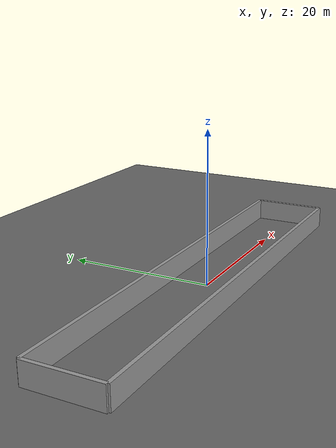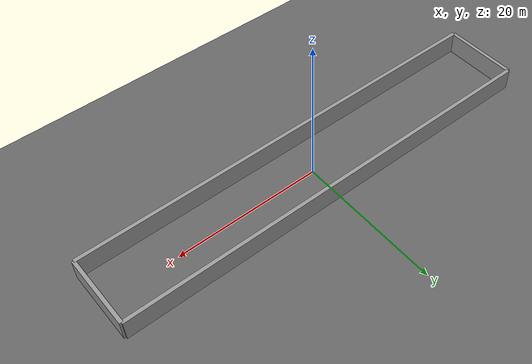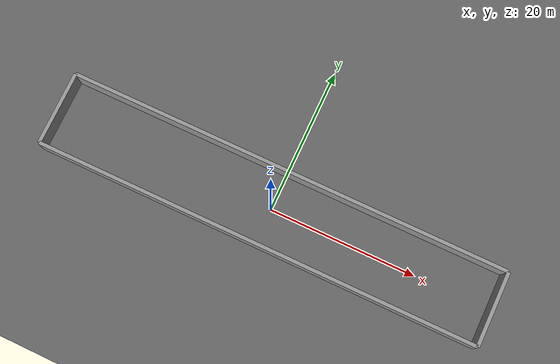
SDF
<?xml version="1.0" ?>
<sdf version="1.9">
  <world name="simple_warehouse">
    <!-- Physics Optimized for RTF 1.0 (5ms step size) -->
    <physics name="5ms" type="ignored">
      <max_step_size>0.005</max_step_size>
      <real_time_factor>1.0</real_time_factor>
      <real_time_update_rate>200</real_time_update_rate>
    </physics>

    <!-- Required Gazebo Sim (Ignition Fortress) system plugins -->
    <plugin filename="libignition-gazebo-physics-system.so"
            name="ignition::gazebo::systems::Physics"/>
    <plugin filename="libignition-gazebo-user-commands-system.so"
            name="ignition::gazebo::systems::UserCommands"/>
    <plugin filename="libignition-gazebo-scene-broadcaster-system.so"
            name="ignition::gazebo::systems::SceneBroadcaster"/>
    <plugin filename="libignition-gazebo-imu-system.so"
            name="ignition::gazebo::systems::Imu"/>
    <plugin filename="libignition-gazebo-sensors-system.so"
            name="ignition::gazebo::systems::Sensors">
      <render_engine>ogre2</render_engine>
    </plugin>

    <scene>
      <ambient>0.8 0.8 0.8 1</ambient>
      <background>0.3 0.3 0.3 1</background>
      <shadows>false</shadows>
    </scene>

    <light type="directional" name="sun">
      <cast_shadows>true</cast_shadows>
      <pose>0 0 10 0 0 0</pose>
      <diffuse>0.8 0.8 0.8 1</diffuse>
      <specular>0.2 0.2 0.2 1</specular>
      <direction>-0.5 0.1 -0.9</direction>
    </light>

    <!-- Ground Plane with friction properties to prevent wheel slippage -->
    <model name="ground_plane">
      <static>true</static>
      <link name="link">
        <collision name="collision">
          <geometry>
            <plane><normal>0 0 1</normal><size>150 150</size></plane>
          </geometry>
          <surface>
            <friction>
              <ode><mu>100</mu><mu2>50</mu2></ode>
            </friction>
          </surface>
        </collision>
        <visual name="visual">
          <geometry>
            <plane><normal>0 0 1</normal><size>150 150</size></plane>
          </geometry>
          <material>
            <ambient>0.4 0.4 0.4 1</ambient>
            <diffuse>0.4 0.4 0.4 1</diffuse>
          </material>
        </visual>
      </link>
    </model>

    <!-- Large Closed Hallway (60m x 10m) -->
    <!-- North/South Walls (Ends) -->
    <model name="wall_north"><static>true</static><pose>30 0 1.5 0 0 0</pose><link name="link"><collision name="c"><geometry><box><size>0.5 10 3</size></box></geometry></collision><visual name="v"><geometry><box><size>0.5 10 3</size></box></geometry><material><ambient>0.6 0.6 0.6 1</ambient><diffuse>0.6 0.6 0.6 1</diffuse></material></visual></link></model>
    <model name="wall_south"><static>true</static><pose>-30 0 1.5 0 0 0</pose><link name="link"><collision name="c"><geometry><box><size>0.5 10 3</size></box></geometry></collision><visual name="v"><geometry><box><size>0.5 10 3</size></box></geometry><material><ambient>0.6 0.6 0.6 1</ambient><diffuse>0.6 0.6 0.6 1</diffuse></material></visual></link></model>
    <!-- East/West Walls (Sides) -->
    <model name="wall_east"><static>true</static><pose>0 5 1.5 0 0 0</pose><link name="link"><collision name="c"><geometry><box><size>60 0.5 3</size></box></geometry></collision><visual name="v"><geometry><box><size>60 0.5 3</size></box></geometry><material><ambient>0.6 0.6 0.6 1</ambient><diffuse>0.6 0.6 0.6 1</diffuse></material></visual></link></model>
    <model name="wall_west"><static>true</static><pose>0 -5 1.5 0 0 0</pose><link name="link"><collision name="c"><geometry><box><size>60 0.5 3</size></box></geometry></collision><visual name="v"><geometry><box><size>60 0.5 3</size></box></geometry><material><ambient>0.6 0.6 0.6 1</ambient><diffuse>0.6 0.6 0.6 1</diffuse></material></visual></link></model>

  </world>
</sdf>
